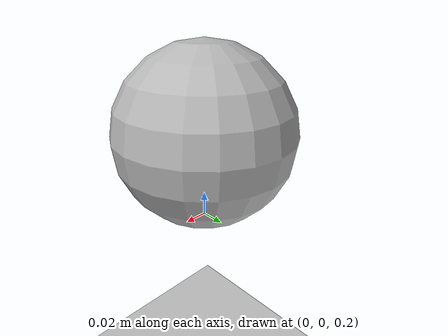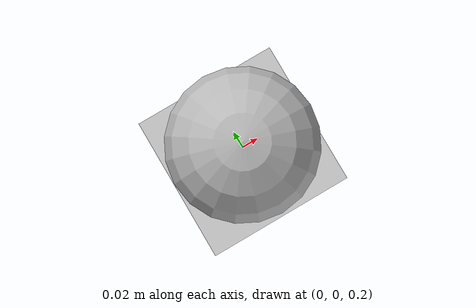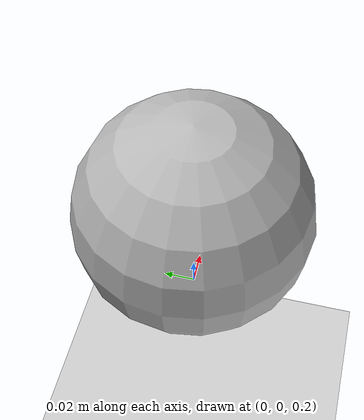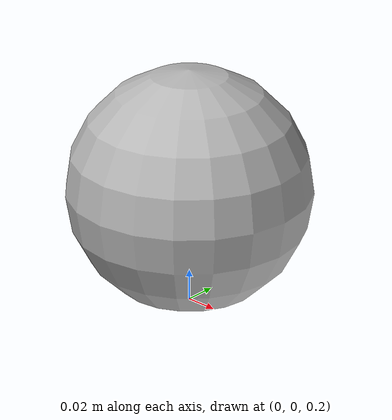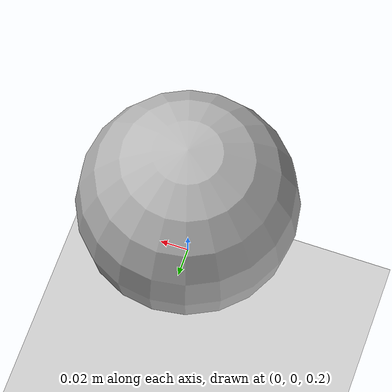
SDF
<?xml version="1.0" ?>

<sdf version="1.6">
  <world name="default">

    <gravity>0 0 -3.0</gravity>

    <include>
      <uri>model://sun</uri>
    </include>

    <include>
      <uri>model://ground_plane</uri>
    </include>

    <model name='unit_sphere'>
      <pose>0.0 0.0 0.275 0 0 0</pose>
      <link name='link'>
        <inertial>
          <mass>0.001</mass>
          <inertia>
            <ixx>0.000001</ixx>
            <ixy>0</ixy>
            <ixz>0</ixz>
            <iyy>0.000001</iyy>
            <iyz>0</iyz>
            <izz>0.000001</izz>
          </inertia>
          <pose>0 0 0 0 0 0</pose>
        </inertial>
        <collision name='collision'>
          <geometry>
            <sphere>
              <radius>0.075</radius>
            </sphere>
          </geometry>
          <surface>
            <bounce>
              <restitution_coefficient>0.8</restitution_coefficient>
              <threshold>0.01</threshold>
            </bounce>
          </surface>
          <max_contacts>20</max_contacts>
        </collision>
        <visual name='visual'>
          <geometry>
            <sphere>
              <radius>0.075</radius>
            </sphere>
          </geometry>
        </visual>
        <self_collide>0</self_collide>
        <enable_wind>0</enable_wind>
        <kinematic>0</kinematic>
      </link>
    </model>
  <plugin name="gazebo_ros_state" filename="libgazebo_ros_state.so">
      <ros>
        <namespace>/gazebo</namespace>
      </ros>
      <update_rate>50</update_rate>
  </plugin>
  </world>
</sdf>
